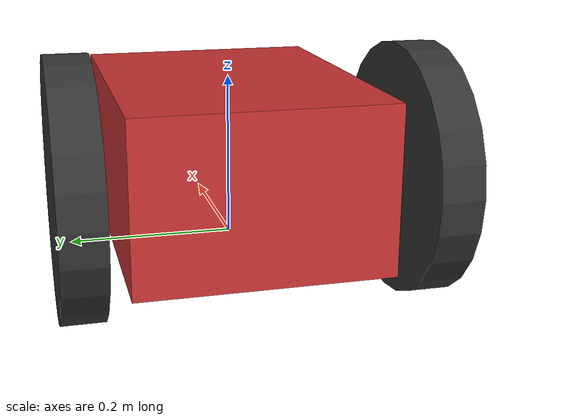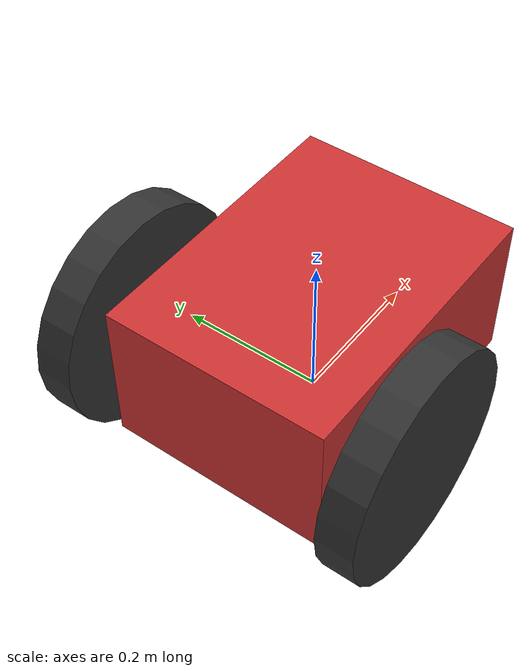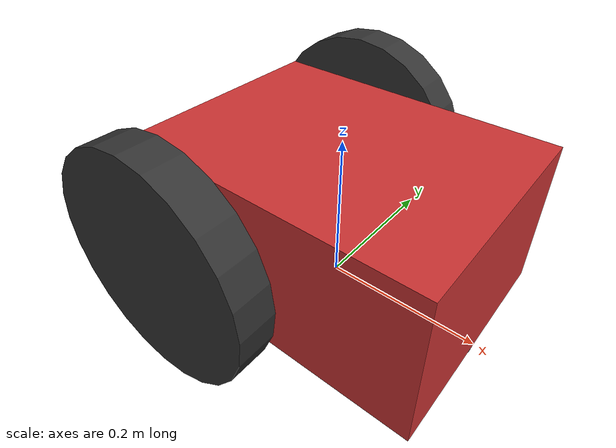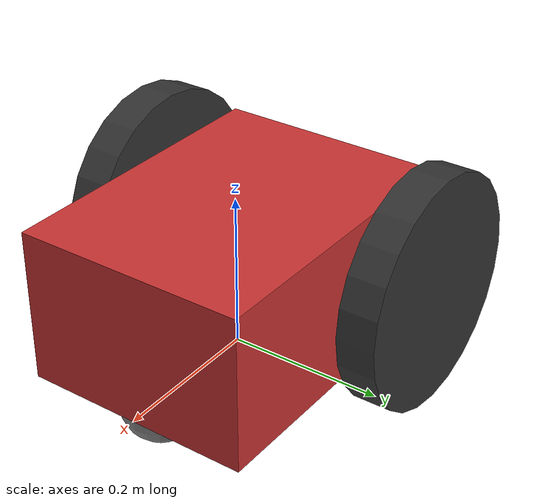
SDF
<?xml version="1.0"?>
<sdf version="1.6">
  <model name="diff_bot">
    <pose>0 0 0.1 0 0 0</pose>

    <link name="base_link">
      <inertial>
        <mass>5.0</mass>
        <inertia>
          <ixx>0.1</ixx>
          <ixy>0</ixy>
          <ixz>0</ixz>
          <iyy>0.1</iyy>
          <iyz>0</iyz>
          <izz>0.1</izz>
        </inertia>
      </inertial>

      <collision name="base_collision">
        <geometry>
          <box>
            <size>0.4 0.3 0.2</size>
          </box>
        </geometry>
      </collision>

      <visual name="base_visual">
        <geometry>
          <box>
            <size>0.4 0.3 0.2</size>
          </box>
        </geometry>
        <material>
          <ambient>0.8 0.2 0.2 1</ambient>
          <diffuse>0.8 0.2 0.2 1</diffuse>
          <specular>0.1 0.1 0.1 1</specular>
        </material>
      </visual>
    </link>

    <!-- Left Wheel -->
    <link name="left_wheel">
      <pose>-0.1 0.2 0 1.5708 0 0</pose>
      <inertial>
        <mass>0.5</mass>
        <inertia>
          <ixx>0.02</ixx>
          <ixy>0</ixy>
          <ixz>0</ixz>
          <iyy>0.02</iyy>
          <iyz>0</iyz>
          <izz>0.02</izz>
        </inertia>
      </inertial>
      <collision name="left_wheel_collision">
        <geometry>
          <cylinder>
            <radius>0.15</radius>
            <length>0.05</length>
          </cylinder>
        </geometry>
      </collision>
      <visual name="left_wheel_visual">
        <geometry>
          <cylinder>
            <radius>0.15</radius>
            <length>0.05</length>
          </cylinder>
        </geometry>
        <material>
          <ambient>0.1 0.1 0.1 1</ambient>
          <diffuse>0.2 0.2 0.2 1</diffuse>
          <specular>0.1 0.1 0.1 1</specular>
        </material>
      </visual>
    </link>

    <!-- Right Wheel -->
    <link name="right_wheel">
      <pose>-0.1 -0.2 0 1.5708 0 0</pose>
      <inertial>
        <mass>0.5</mass>
        <inertia>
          <ixx>0.02</ixx>
          <ixy>0</ixy>
          <ixz>0</ixz>
          <iyy>0.02</iyy>
          <iyz>0</iyz>
          <izz>0.02</izz>
        </inertia>
      </inertial>
      <collision name="right_wheel_collision">
        <geometry>
          <cylinder>
            <radius>0.15</radius>
            <length>0.05</length>
          </cylinder>
        </geometry>
      </collision>
      <visual name="right_wheel_visual">
        <geometry>
          <cylinder>
            <radius>0.15</radius>
            <length>0.05</length>
          </cylinder>
        </geometry>
        <material>
          <ambient>0.1 0.1 0.1 1</ambient>
          <diffuse>0.2 0.2 0.2 1</diffuse>
          <specular>0.1 0.1 0.1 1</specular>
        </material>
      </visual>
    </link>

    <!-- Joints -->
    <joint name="left_wheel_joint" type="revolute">
      <parent>base_link</parent>
      <child>left_wheel</child>
      <axis>
        <xyz>0 0 1</xyz>
        <limit>
          <lower>-1e16</lower>
          <upper>1e16</upper>
        </limit>
      </axis>
    </joint>

    <joint name="right_wheel_joint" type="revolute">
      <parent>base_link</parent>
      <child>right_wheel</child>
      <axis>
        <xyz>0 0 1</xyz>
        <limit>
          <lower>-1e16</lower>
          <upper>1e16</upper>
        </limit>
      </axis>
    </joint>

    <!-- Caster Wheel -->
    <link name="caster_wheel">
      <pose>0.15 0 -0.1 0 0 0</pose>
      <inertial>
        <mass>0.1</mass>
        <inertia>
          <ixx>0.001</ixx>
          <ixy>0</ixy>
          <ixz>0</ixz>
          <iyy>0.001</iyy>
          <iyz>0</iyz>
          <izz>0.001</izz>
        </inertia>
      </inertial>
      <collision name="caster_wheel_collision">
        <geometry>
          <sphere>
            <radius>0.05</radius>
          </sphere>
        </geometry>
      </collision>
      <visual name="caster_wheel_visual">
        <geometry>
          <sphere>
            <radius>0.05</radius>
          </sphere>
        </geometry>
        <material>
          <ambient>0.3 0.3 0.3 1</ambient>
          <diffuse>0.5 0.5 0.5 1</diffuse>
          <specular>0.1 0.1 0.1 1</specular>
        </material>
      </visual>
    </link>

    <joint name="caster_wheel_joint" type="ball">
      <parent>base_link</parent>
      <child>caster_wheel</child>
    </joint>

    <!-- Plugin for controlling the robot -->
    <plugin filename="libignition-gazebo-diff-drive-system.so" name="ignition::gazebo::systems::DiffDrive">
      <left_joint>left_wheel_joint</left_joint>
      <right_joint>right_wheel_joint</right_joint>
      <wheel_separation>0.4</wheel_separation>
      <wheel_radius>0.15</wheel_radius>
      <odom_publish_frequency>30</odom_publish_frequency>
      <topic>cmd_vel</topic>
      <odom_topic>odom</odom_topic>
      <odom_frame>odom</odom_frame>
      <robot_base_frame>base_link</robot_base_frame>
    </plugin>

    <!-- Joint states plugin -->
    <plugin filename="ignition-gazebo-joint-state-publisher-system" name="ignition::gazebo::systems::JointStatePublisher"/>

  </model>
</sdf>
